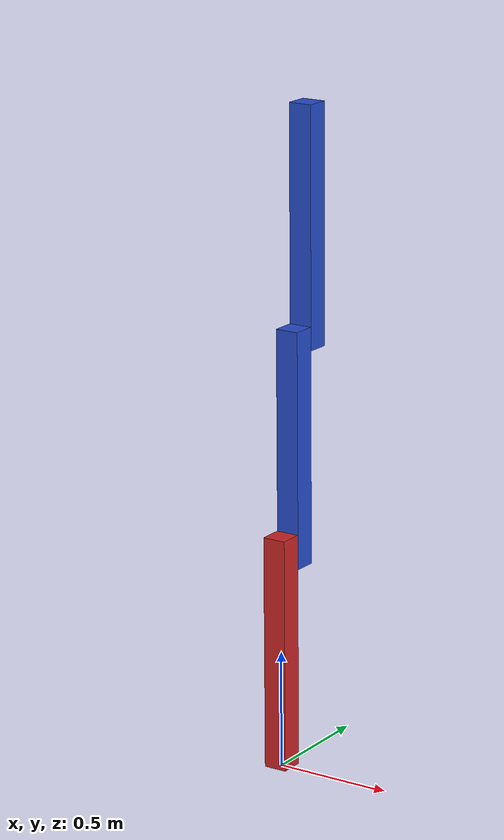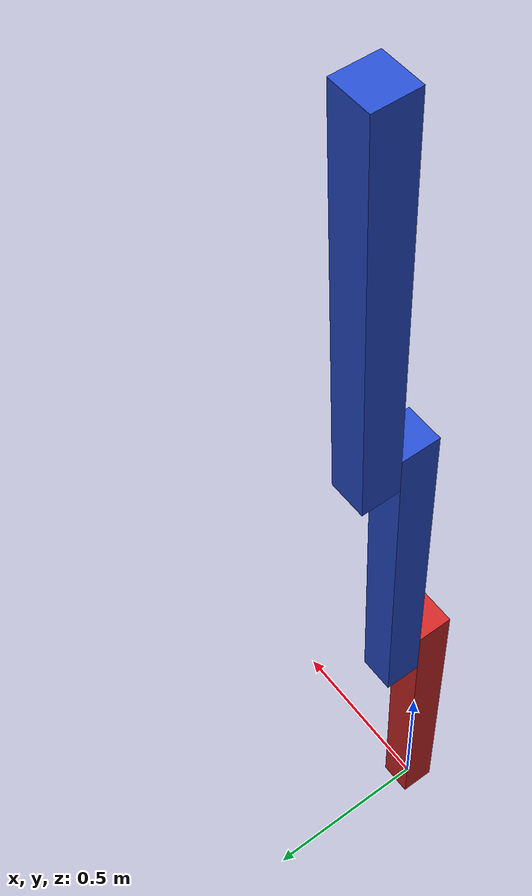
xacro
<?xml version="1.0"?>
<!-- Revolute-Revolute Manipulator -->
<robot name="rr_manipulator"
  xmlns:xacro="http://www.ros.org/wiki/xacro"
  xmlns:controller="http://playerstage.sourceforge.net/gazebo/xmlschema/#controller">

  <xacro:property name="PI" value="3.1415926535897931"/>

  <!-- ros_control_gazebo plugin -->
  <gazebo>
    <plugin name="ros_control" filename="libros_control_gazebo_plugin.so">
      <ns>rr/ros_control</ns>
      <robotSimType>ros_control_gazebo_tests/RobotSimRR</robotSimType>
      <controlPeriod>0.001</controlPeriod>
    </plugin>

    <material name="red">Gazebo/Red</material>
    <material name="blue">Gazebo/Blue</material>
  </gazebo>

  <link name="world"/>

  <link name="link1">
    <collision>
      <origin xyz="0 0 0.5" rpy="0 0 0"/>
      <geometry>
        <box size="0.1 0.1 1"/>
      </geometry>
      <material name="red"/>
    </collision>

    <visual>
      <origin xyz="0 0 0.5" rpy="0 0 0"/>
      <geometry>
        <box size="0.1 0.1 1"/>
      </geometry>
      <material name="red"/>

    </visual>

    <inertial>
      <origin xyz="0 0 0.5" rpy="0 0 0"/>
      <mass value="1"/>
      <inertia
        ixx="1.0" ixy="0.0" ixz="0.0"
        iyy="1.0" iyz="0.0"
        izz="1.0"/>
    </inertial>
  </link>

  <link name="link2">
    <collision>
      <origin xyz="0 0 0.45" rpy="0 0 0"/>
      <geometry>
        <box size="0.1 0.1 1"/>
      </geometry>
      <material name="blue"/>
    </collision>

    <visual>
      <origin xyz="0 0 0.45" rpy="0 0 0"/>
      <geometry>
        <box size="0.1 0.1 1"/>
      </geometry>
      <material name="blue"/>
    </visual>

    <inertial>
      <origin xyz="0 0 1.5" rpy="0 0 0"/>
      <mass value="1"/>
      <inertia
        ixx="1.0" ixy="0.0" ixz="0.0"
        iyy="1.0" iyz="0.0"
        izz="1.0"/>
    </inertial>
  </link>

  <link name="link3">
    <collision>
      <origin xyz="0 0 0.45" rpy="0 0 0"/>
      <geometry>
        <box size="0.1 0.1 1"/>
      </geometry>
      <material name="blue"/>
    </collision>

    <visual>
      <origin xyz="0 0 0.45" rpy="0 0 0"/>
      <geometry>
        <box size="0.1 0.1 1"/>
      </geometry>
      <material name="blue"/>
    </visual>

    <inertial>
      <origin xyz="0 0 1.5" rpy="0 0 0"/>
      <mass value="1"/>
      <inertia
        ixx="1.0" ixy="0.0" ixz="0.0"
        iyy="1.0" iyz="0.0"
        izz="1.0"/>
    </inertial>
  </link>

  <gazebo reference="link3">
    <mu1>0.2</mu1>
    <mu2>0.2</mu2>
  </gazebo>

  <joint name="fixed" type="fixed">
    <parent link="world"/>
    <child link="link1"/>
    <!--origin xyz="0 0 1" rpy="${PI} 0 0"/-->
  </joint>

  <joint name="joint1" type="continuous">
    <parent link="link1"/>
    <child link="link2"/>
    <origin xyz="0 0.1 0.9" rpy="0 0 0"/>
    <axis xyz="0 1 0"/>
  </joint>

  <joint name="joint2" type="continuous">
    <parent link="link2"/>
    <child link="link3"/>
    <origin xyz="0 0.1 0.9" rpy="0 0 0"/>
    <axis xyz="0 1 0"/>
  </joint>

</robot>
